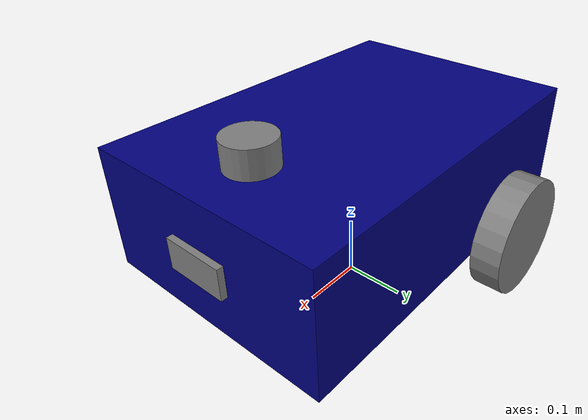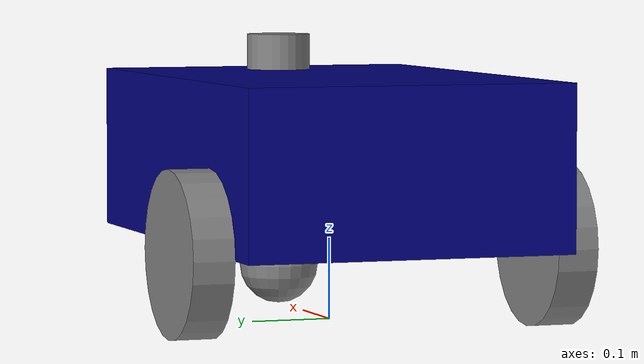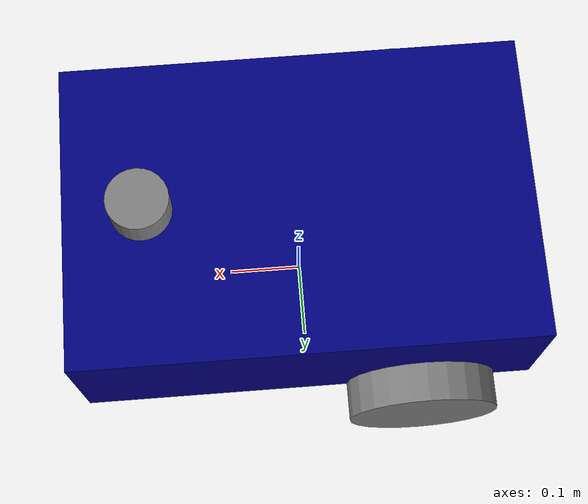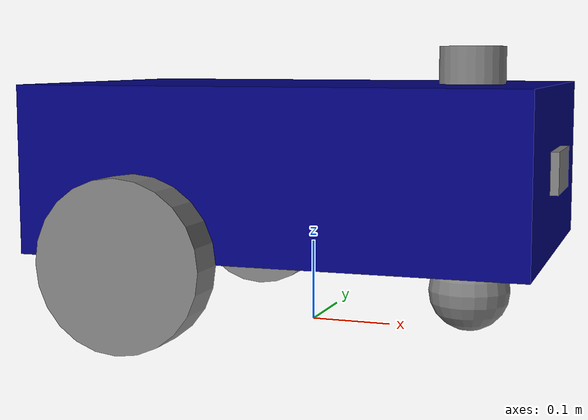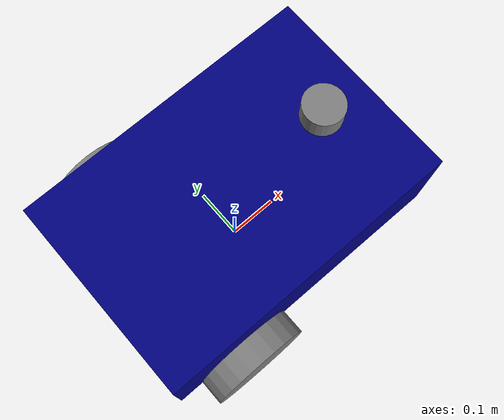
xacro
<?xml version="1.0"?>
<robot name="my_robot" xmlns:xacro="http://www.ros.org/wiki/xacro">

    <xacro:include filename="common_properties.xacro" />
    <xacro:include filename="mobile_base.xacro" />
    <xacro:include filename="mobile_base_gazebo.xacro" />
    <xacro:include filename="camera.xacro" />
    <xacro:include filename="lidar.xacro"/>

</robot>

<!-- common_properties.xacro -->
<robot xmlns:xacro="http://www.ros.org/wiki/xacro">

    <material name="blue">
        <color rgba="0 0 0.5 1" />
    </material>

    <material name="grey">
        <color rgba="0.5 0.5 0.5 1" />
    </material>

    <xacro:macro name="box_inertia" params="m x y z o_xyz o_rpy">
        <inertial>
            <mass value="${m}" />
            <origin xyz="${o_xyz}" rpy="${o_rpy}" />
            <inertia ixx="${(m/12) * (y*y + z*z)}" ixy="0" ixz="0"
                     iyy="${(m/12) * (x*x + z*z)}" iyz="0"
                     izz="${(m/12) * (x*x + y*y)}" />
        </inertial>
    </xacro:macro>

    <xacro:macro name="cylinder_inertia" params="m r l o_xyz o_rpy">
        <inertial>
            <mass value="${m}" />
            <origin xyz="${o_xyz}" rpy="${o_rpy}" />
            <inertia ixx="${(m/12) * (3*r*r + l*l)}" ixy="0" ixz="0"
                     iyy="${(m/12) * (3*r*r + l*l)}" iyz="0"
                     izz="${(m/2) * (r*r)}" />
        </inertial>
    </xacro:macro>

    <xacro:macro name="sphere_inertia" params="m r o_xyz o_rpy">
        <inertial>
            <mass value="${m}" />
            <origin xyz="${o_xyz}" rpy="${o_rpy}" />
            <inertia ixx="${(2/5) * m * r * r}" ixy="0" ixz="0"
                     iyy="${(2/5) * m * r * r}" iyz="0"
                     izz="${(2/5) * m * r * r}" />
        </inertial>
    </xacro:macro>

</robot>

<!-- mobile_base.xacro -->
<robot xmlns:xacro="http://www.ros.org/wiki/xacro">

    <xacro:property name="base_length" value="0.6" />
    <xacro:property name="base_width" value="0.4" />
    <xacro:property name="base_height" value="0.2" />
    <xacro:property name="wheel_radius" value="0.1" />
    <xacro:property name="wheel_length" value="0.05" />

    <link name="base_footprint" />

    <link name="base_link">
        <visual>
            <geometry>
                <box size="${base_length} ${base_width} ${base_height}" />
            </geometry>
            <origin xyz="0 0 ${base_height / 2.0}" rpy="0 0 0" />
            <material name="blue" />
        </visual>
        <xacro:box_inertia m="5.0" x="${base_length}" y="${base_width}" z="${base_height}"
                           o_xyz="0 0 ${base_height / 2.0}" o_rpy="0 0 0" />
        <collision>
            <geometry>
                <box size="${base_length} ${base_width} ${base_height}" />
            </geometry>
            <origin xyz="0 0 ${base_height / 2.0}" rpy="0 0 0" />
        </collision>
    </link>

    <xacro:macro name="wheel_link" params="prefix">
        <link name="${prefix}_wheel_link">
            <visual>
                <geometry>
                    <cylinder radius="${wheel_radius}" length="${wheel_length}" />
                </geometry>
                <origin xyz="0 0 0" rpy="${pi / 2.0} 0 0" />
                <material name="grey" />
            </visual>
            <xacro:cylinder_inertia m="1.0" r="${wheel_radius}" l="${wheel_length}"
                                    o_xyz="0 0 0" o_rpy="${pi / 2.0} 0 0" />
            <collision>
                <geometry>
                    <sphere radius="${wheel_radius}" />
                </geometry>
                <origin xyz="0 0 0" rpy="${pi / 2.0} 0 0" />
            </collision>
        </link>
    </xacro:macro>

    <xacro:wheel_link prefix="right" />
    <xacro:wheel_link prefix="left" />

    <link name="caster_wheel_link">
        <visual>
            <geometry>
                <sphere radius="${wheel_radius / 2.0}" />
            </geometry>
            <origin xyz="0 0 0" rpy="0 0 0" />
            <material name="grey" />
        </visual>
        <xacro:sphere_inertia m="0.5" r="${wheel_radius / 2.0}"
                              o_xyz="0 0 0" o_rpy="0 0 0" />
        <collision>
            <geometry>
                <sphere radius="${wheel_radius}" />
            </geometry>
            <origin xyz="0 0 0" rpy="${pi / 2.0} 0 0" />
        </collision>
    </link>

    <joint name="base_joint" type="fixed">
        <parent link="base_footprint" />
        <child link="base_link" />
        <origin xyz="0 0 ${wheel_radius}" rpy="0 0 0" />
    </joint>

    <joint name="base_right_wheel_joint" type="continuous">
        <parent link="base_link" />
        <child link="right_wheel_link" />
        <origin xyz="${-base_length / 4.0} ${-(base_width + wheel_length) / 2.0} 0" rpy="0 0 0" />
        <axis xyz="0 1 0" />
    </joint>

    <joint name="base_left_wheel_joint" type="continuous">
        <parent link="base_link" />
        <child link="left_wheel_link" />
        <origin xyz="${-base_length / 4.0} ${(base_width + wheel_length) / 2.0} 0" rpy="0 0 0" />
        <axis xyz="0 1 0" />
    </joint>

    <joint name="base_caster_wheel_joint" type="fixed">
        <parent link="base_link" />
        <child link="caster_wheel_link" />
        <origin xyz="${base_length / 3.0} 0 ${-wheel_radius / 2.0}" rpy="0 0 0" />
    </joint>

</robot>

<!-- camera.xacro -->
<robot xmlns:xacro="http://www.ros.org/wiki/xacro">

    <xacro:property name="camera_length" value="0.01" />
    <xacro:property name="camera_width" value="0.1" />
    <xacro:property name="camera_height" value="0.05" />

    <link name="camera_link">
        <visual>
            <geometry>
                <box size="${camera_length} ${camera_width} ${camera_height}" />
            </geometry>
            <material name="grey" />
        </visual>
        <collision>
            <geometry>
                <box size="${camera_length} ${camera_width} ${camera_height}" />
            </geometry>
        </collision>
        <xacro:box_inertia m="0.1" x="${camera_length}" y="${camera_width}" z="${camera_height}"
                           o_xyz="0 0 0" o_rpy="0 0 0" />
    </link>

    <joint name="base_camera_joint" type="fixed">
        <parent link="base_link" />
        <child link="camera_link" />
        <origin xyz="${(base_length + camera_length) / 2.0} 0 ${base_height / 2.0}" rpy="0 0 0" />
    </joint>

    <link name="camera_link_optical" />

    <joint name="camera_optical_joint" type="fixed">
        <origin xyz="0 0 0" rpy="${-pi/2} 0 ${-pi/2}"/>
        <parent link="camera_link"/>
        <child link="camera_link_optical"/>
    </joint>

    <!-- RGBD Camera Sensor for Navigation -->
    <gazebo reference="camera_link">
        <sensor name="rgbd_camera" type="rgbd_camera">
            <camera>
                <horizontal_fov>1.3962634</horizontal_fov>
                <image>
                    <width>640</width>
                    <height>480</height>
                    <format>R8G8B8</format>
                </image>
                <clip>
                    <near>0.1</near>
                    <far>15</far>
                </clip>
                <depth_camera>
                    <clip>
                        <near>0.1</near>
                        <far>10.0</far>
                    </clip>
                </depth_camera>
                <noise>
                    <type>gaussian</type>
                    <mean>0.0</mean>
                    <stddev>0.007</stddev>
                </noise>
                <optical_frame_id>camera_link_optical</optical_frame_id>
            </camera>
            <always_on>1</always_on>
            <update_rate>15</update_rate>
            <visualize>true</visualize>
            <!-- RGB Image topic -->
            <!-- RGB Image public topic -->
            <topic>camera</topic>
            <!-- Depth topics are auto-generated as camera/depth_image and camera/points -->
            <gz_frame_id>camera_link_optical</gz_frame_id>
        </sensor>
    </gazebo>

</robot>

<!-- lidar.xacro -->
<robot xmlns:xacro="http://www.ros.org/wiki/xacro">

  <!-- LIDAR Parameters -->
  <xacro:property name="lidar_radius" value="0.04"/>
  <xacro:property name="lidar_height" value="0.05"/>
  <xacro:property name="lidar_xyz" value="0.20 0.0 0.22"/>
  <xacro:property name="lidar_rpy" value="0 0 0"/>

  <!-- LIDAR Link -->
  <link name="lidar_link">
    <visual>
      <geometry>
        <cylinder radius="${lidar_radius}" length="${lidar_height}"/>
      </geometry>
      <material name="grey"/>
    </visual>
    <collision>
      <geometry>
        <cylinder radius="${lidar_radius}" length="${lidar_height}"/>
      </geometry>
    </collision>
    <inertial>
      <mass value="0.2"/>
      <inertia ixx="0.0002" ixy="0.0" ixz="0.0" iyy="0.0002" iyz="0.0" izz="0.0002"/>
    </inertial>
  </link>

  <!-- Fixed Joint to Base -->
  <joint name="base_lidar_joint" type="fixed">
    <origin xyz="${lidar_xyz}" rpy="${lidar_rpy}"/>
    <parent link="base_link"/>
    <child link="lidar_link"/>
  </joint>

  <!-- Gazebo LIDAR Sensor (GPU Lidar for Gazebo Fortress/Harmonic) -->
  <gazebo reference="lidar_link">
    <sensor name="gpu_lidar" type="gpu_lidar">
      <update_rate>10</update_rate>
      <topic>scan</topic>
      <gz_frame_id>lidar_link</gz_frame_id>
      <lidar>
        <scan>
          <horizontal>
            <samples>360</samples>
            <resolution>1</resolution>
            <min_angle>-3.14159</min_angle>
            <max_angle>3.14159</max_angle>
          </horizontal>
        </scan>
        <range>
          <min>0.12</min>
          <max>10.0</max>
          <resolution>0.01</resolution>
        </range>
        <noise>
          <type>gaussian</type>
          <mean>0</mean>
          <stddev>0.01</stddev>
        </noise>
      </lidar>
      <always_on>true</always_on>
      <visualize>true</visualize>
    </sensor>
  </gazebo>

</robot>
